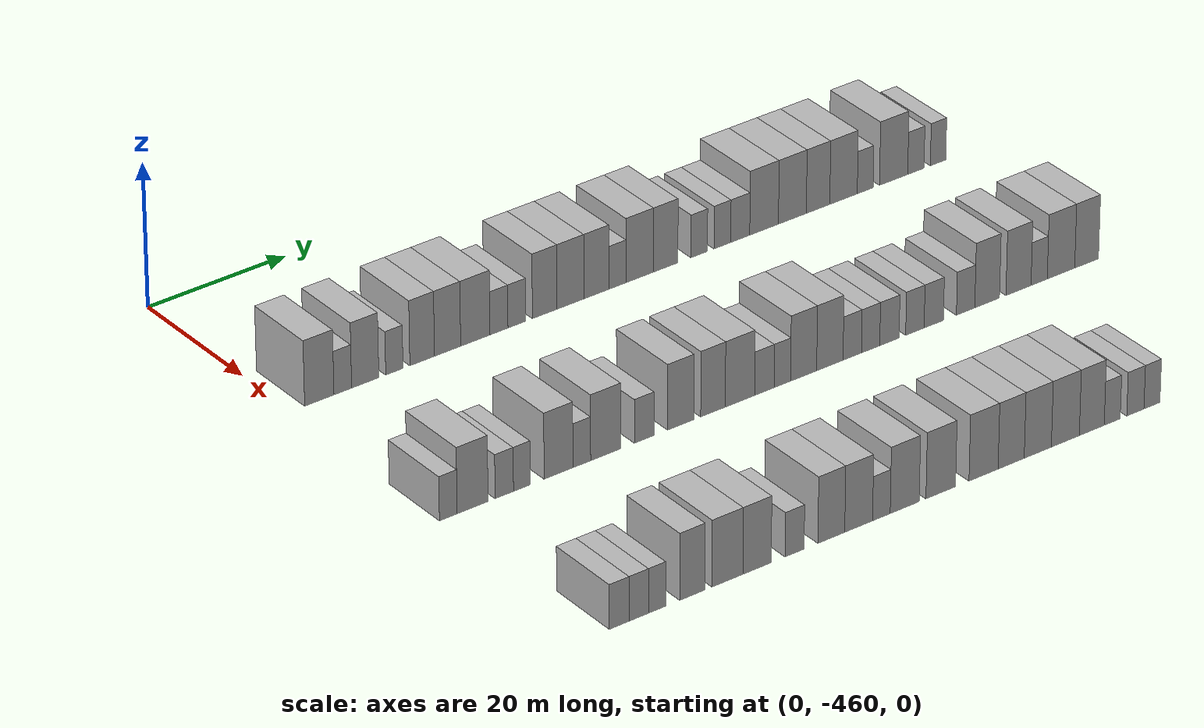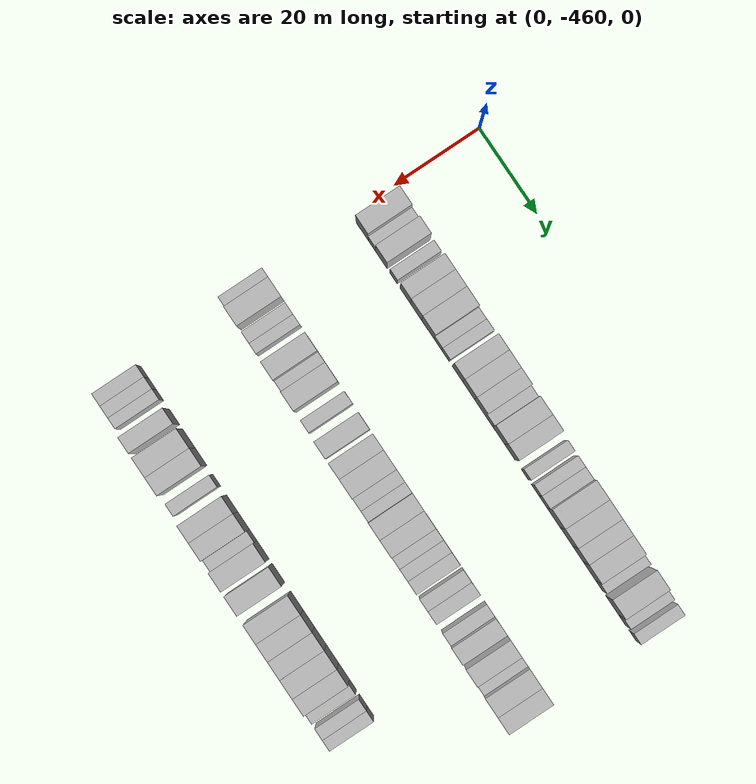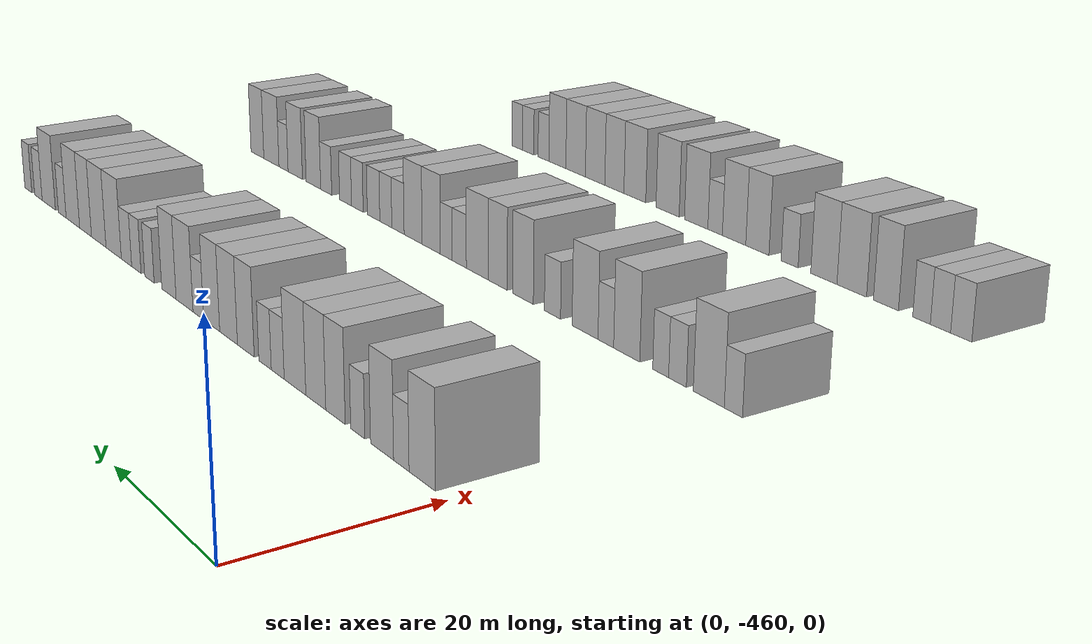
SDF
<sdf version="1.6">
 <world name="default">
  <model name="building_1">
   <static>1</static>
   <pose>25.0000 -455.8936 0 0.000000 0.000000 0.000000</pose>
   <link name="link">
    <pose>0 0 4.50 0 0 0</pose>
    <collision name="collision"><geometry><box><size>10.0000 4.2127 9.0000</size></box></geometry></collision>
    <visual name="visual">
     <cast_shadows>0</cast_shadows>
     <geometry><box><size>10.0000 4.2127 9.0000</size></box></geometry>
     <material>
      <script>
       <uri>model://HANNAS_wall/materials/scripts</uri>
       <uri>model://HANNAS_wall/materials/textures</uri>
       <name>vrc/HANNAS_wall</name>
      </script>
     </material>
    </visual>
   </link>
  </model>
  <model name="building_2">
   <static>1</static>
   <pose>25.0000 -452.5124 0 0.000000 0.000000 0.000000</pose>
   <link name="link">
    <pose>0 0 3.00 0 0 0</pose>
    <collision name="collision"><geometry><box><size>10.0000 2.5498 6.0000</size></box></geometry></collision>
    <visual name="visual">
     <cast_shadows>0</cast_shadows>
     <geometry><box><size>10.0000 2.5498 6.0000</size></box></geometry>
     <material>
      <script>
       <uri>model://HANNAS_wall/materials/scripts</uri>
       <uri>model://HANNAS_wall/materials/textures</uri>
       <name>vrc/HANNAS_wall</name>
      </script>
     </material>
    </visual>
   </link>
  </model>
  <model name="building_3">
   <static>1</static>
   <pose>25.0000 -449.2674 0 0.000000 0.000000 0.000000</pose>
   <link name="link">
    <pose>0 0 4.50 0 0 0</pose>
    <collision name="collision"><geometry><box><size>10.0000 3.9400 9.0000</size></box></geometry></collision>
    <visual name="visual">
     <cast_shadows>0</cast_shadows>
     <geometry><box><size>10.0000 3.9400 9.0000</size></box></geometry>
     <material>
      <script>
       <uri>model://HANNAS_wall/materials/scripts</uri>
       <uri>model://HANNAS_wall/materials/textures</uri>
       <name>vrc/HANNAS_wall</name>
      </script>
     </material>
    </visual>
   </link>
  </model>
  <model name="building_4">
   <static>1</static>
   <pose>25.0000 -445.0389 0 0.000000 0.000000 0.000000</pose>
   <link name="link">
    <pose>0 0 3.00 0 0 0</pose>
    <collision name="collision"><geometry><box><size>10.0000 2.5171 6.0000</size></box></geometry></collision>
    <visual name="visual">
     <cast_shadows>0</cast_shadows>
     <geometry><box><size>10.0000 2.5171 6.0000</size></box></geometry>
     <material>
      <script>
       <uri>model://HANNAS_wall/materials/scripts</uri>
       <uri>model://HANNAS_wall/materials/textures</uri>
       <name>vrc/HANNAS_wall</name>
      </script>
     </material>
    </visual>
   </link>
  </model>
  <model name="building_5">
   <static>1</static>
   <pose>25.0000 -440.9776 0 0.000000 0.000000 0.000000</pose>
   <link name="link">
    <pose>0 0 4.50 0 0 0</pose>
    <collision name="collision"><geometry><box><size>10.0000 3.6056 9.0000</size></box></geometry></collision>
    <visual name="visual">
     <cast_shadows>0</cast_shadows>
     <geometry><box><size>10.0000 3.6056 9.0000</size></box></geometry>
     <material>
      <script>
       <uri>model://HANNAS_wall/materials/scripts</uri>
       <uri>model://HANNAS_wall/materials/textures</uri>
       <name>vrc/HANNAS_wall</name>
      </script>
     </material>
    </visual>
   </link>
  </model>
  <model name="building_6">
   <static>1</static>
   <pose>25.0000 -437.2554 0 0.000000 0.000000 0.000000</pose>
   <link name="link">
    <pose>0 0 4.50 0 0 0</pose>
    <collision name="collision"><geometry><box><size>10.0000 3.8387 9.0000</size></box></geometry></collision>
    <visual name="visual">
     <cast_shadows>0</cast_shadows>
     <geometry><box><size>10.0000 3.8387 9.0000</size></box></geometry>
     <material>
      <script>
       <uri>model://HANNAS_wall/materials/scripts</uri>
       <uri>model://HANNAS_wall/materials/textures</uri>
       <name>vrc/HANNAS_wall</name>
      </script>
     </material>
    </visual>
   </link>
  </model>
  <model name="building_7">
   <static>1</static>
   <pose>25.0000 -433.1729 0 0.000000 0.000000 0.000000</pose>
   <link name="link">
    <pose>0 0 4.50 0 0 0</pose>
    <collision name="collision"><geometry><box><size>10.0000 4.3263 9.0000</size></box></geometry></collision>
    <visual name="visual">
     <cast_shadows>0</cast_shadows>
     <geometry><box><size>10.0000 4.3263 9.0000</size></box></geometry>
     <material>
      <script>
       <uri>model://HANNAS_wall/materials/scripts</uri>
       <uri>model://HANNAS_wall/materials/textures</uri>
       <name>vrc/HANNAS_wall</name>
      </script>
     </material>
    </visual>
   </link>
  </model>
  <model name="building_8">
   <static>1</static>
   <pose>25.0000 -429.6793 0 0.000000 0.000000 0.000000</pose>
   <link name="link">
    <pose>0 0 3.00 0 0 0</pose>
    <collision name="collision"><geometry><box><size>10.0000 2.6608 6.0000</size></box></geometry></collision>
    <visual name="visual">
     <cast_shadows>0</cast_shadows>
     <geometry><box><size>10.0000 2.6608 6.0000</size></box></geometry>
     <material>
      <script>
       <uri>model://HANNAS_wall/materials/scripts</uri>
       <uri>model://HANNAS_wall/materials/textures</uri>
       <name>vrc/HANNAS_wall</name>
      </script>
     </material>
    </visual>
   </link>
  </model>
  <model name="building_9">
   <static>1</static>
   <pose>25.0000 -427.0337 0 0.000000 0.000000 0.000000</pose>
   <link name="link">
    <pose>0 0 3.00 0 0 0</pose>
    <collision name="collision"><geometry><box><size>10.0000 2.6304 6.0000</size></box></geometry></collision>
    <visual name="visual">
     <cast_shadows>0</cast_shadows>
     <geometry><box><size>10.0000 2.6304 6.0000</size></box></geometry>
     <material>
      <script>
       <uri>model://HANNAS_wall/materials/scripts</uri>
       <uri>model://HANNAS_wall/materials/textures</uri>
       <name>vrc/HANNAS_wall</name>
      </script>
     </material>
    </visual>
   </link>
  </model>
  <model name="building_10">
   <static>1</static>
   <pose>25.0000 -422.8815 0 0.000000 0.000000 0.000000</pose>
   <link name="link">
    <pose>0 0 4.50 0 0 0</pose>
    <collision name="collision"><geometry><box><size>10.0000 3.6740 9.0000</size></box></geometry></collision>
    <visual name="visual">
     <cast_shadows>0</cast_shadows>
     <geometry><box><size>10.0000 3.6740 9.0000</size></box></geometry>
     <material>
      <script>
       <uri>model://HANNAS_wall/materials/scripts</uri>
       <uri>model://HANNAS_wall/materials/textures</uri>
       <name>vrc/HANNAS_wall</name>
      </script>
     </material>
    </visual>
   </link>
  </model>
  <model name="building_11">
   <static>1</static>
   <pose>25.0000 -419.0281 0 0.000000 0.000000 0.000000</pose>
   <link name="link">
    <pose>0 0 4.50 0 0 0</pose>
    <collision name="collision"><geometry><box><size>10.0000 4.0328 9.0000</size></box></geometry></collision>
    <visual name="visual">
     <cast_shadows>0</cast_shadows>
     <geometry><box><size>10.0000 4.0328 9.0000</size></box></geometry>
     <material>
      <script>
       <uri>model://HANNAS_wall/materials/scripts</uri>
       <uri>model://HANNAS_wall/materials/textures</uri>
       <name>vrc/HANNAS_wall</name>
      </script>
     </material>
    </visual>
   </link>
  </model>
  <model name="building_12">
   <static>1</static>
   <pose>25.0000 -415.1322 0 0.000000 0.000000 0.000000</pose>
   <link name="link">
    <pose>0 0 4.50 0 0 0</pose>
    <collision name="collision"><geometry><box><size>10.0000 3.7590 9.0000</size></box></geometry></collision>
    <visual name="visual">
     <cast_shadows>0</cast_shadows>
     <geometry><box><size>10.0000 3.7590 9.0000</size></box></geometry>
     <material>
      <script>
       <uri>model://HANNAS_wall/materials/scripts</uri>
       <uri>model://HANNAS_wall/materials/textures</uri>
       <name>vrc/HANNAS_wall</name>
      </script>
     </material>
    </visual>
   </link>
  </model>
  <model name="building_13">
   <static>1</static>
   <pose>25.0000 -411.9635 0 0.000000 0.000000 0.000000</pose>
   <link name="link">
    <pose>0 0 3.00 0 0 0</pose>
    <collision name="collision"><geometry><box><size>10.0000 2.5786 6.0000</size></box></geometry></collision>
    <visual name="visual">
     <cast_shadows>0</cast_shadows>
     <geometry><box><size>10.0000 2.5786 6.0000</size></box></geometry>
     <material>
      <script>
       <uri>model://HANNAS_wall/materials/scripts</uri>
       <uri>model://HANNAS_wall/materials/textures</uri>
       <name>vrc/HANNAS_wall</name>
      </script>
     </material>
    </visual>
   </link>
  </model>
  <model name="building_14">
   <static>1</static>
   <pose>25.0000 -408.5724 0 0.000000 0.000000 0.000000</pose>
   <link name="link">
    <pose>0 0 4.50 0 0 0</pose>
    <collision name="collision"><geometry><box><size>10.0000 4.2035 9.0000</size></box></geometry></collision>
    <visual name="visual">
     <cast_shadows>0</cast_shadows>
     <geometry><box><size>10.0000 4.2035 9.0000</size></box></geometry>
     <material>
      <script>
       <uri>model://HANNAS_wall/materials/scripts</uri>
       <uri>model://HANNAS_wall/materials/textures</uri>
       <name>vrc/HANNAS_wall</name>
      </script>
     </material>
    </visual>
   </link>
  </model>
  <model name="building_15">
   <static>1</static>
   <pose>25.0000 -404.6288 0 0.000000 0.000000 0.000000</pose>
   <link name="link">
    <pose>0 0 4.50 0 0 0</pose>
    <collision name="collision"><geometry><box><size>10.0000 3.6838 9.0000</size></box></geometry></collision>
    <visual name="visual">
     <cast_shadows>0</cast_shadows>
     <geometry><box><size>10.0000 3.6838 9.0000</size></box></geometry>
     <material>
      <script>
       <uri>model://HANNAS_wall/materials/scripts</uri>
       <uri>model://HANNAS_wall/materials/textures</uri>
       <name>vrc/HANNAS_wall</name>
      </script>
     </material>
    </visual>
   </link>
  </model>
  <model name="building_16">
   <static>1</static>
   <pose>25.0000 -399.5275 0 0.000000 0.000000 0.000000</pose>
   <link name="link">
    <pose>0 0 3.00 0 0 0</pose>
    <collision name="collision"><geometry><box><size>10.0000 2.5189 6.0000</size></box></geometry></collision>
    <visual name="visual">
     <cast_shadows>0</cast_shadows>
     <geometry><box><size>10.0000 2.5189 6.0000</size></box></geometry>
     <material>
      <script>
       <uri>model://HANNAS_wall/materials/scripts</uri>
       <uri>model://HANNAS_wall/materials/textures</uri>
       <name>vrc/HANNAS_wall</name>
      </script>
     </material>
    </visual>
   </link>
  </model>
  <model name="building_17">
   <static>1</static>
   <pose>25.0000 -395.9769 0 0.000000 0.000000 0.000000</pose>
   <link name="link">
    <pose>0 0 3.00 0 0 0</pose>
    <collision name="collision"><geometry><box><size>10.0000 2.5824 6.0000</size></box></geometry></collision>
    <visual name="visual">
     <cast_shadows>0</cast_shadows>
     <geometry><box><size>10.0000 2.5824 6.0000</size></box></geometry>
     <material>
      <script>
       <uri>model://HANNAS_wall/materials/scripts</uri>
       <uri>model://HANNAS_wall/materials/textures</uri>
       <name>vrc/HANNAS_wall</name>
      </script>
     </material>
    </visual>
   </link>
  </model>
  <model name="building_18">
   <static>1</static>
   <pose>25.0000 -393.2305 0 0.000000 0.000000 0.000000</pose>
   <link name="link">
    <pose>0 0 3.00 0 0 0</pose>
    <collision name="collision"><geometry><box><size>10.0000 2.9103 6.0000</size></box></geometry></collision>
    <visual name="visual">
     <cast_shadows>0</cast_shadows>
     <geometry><box><size>10.0000 2.9103 6.0000</size></box></geometry>
     <material>
      <script>
       <uri>model://HANNAS_wall/materials/scripts</uri>
       <uri>model://HANNAS_wall/materials/textures</uri>
       <name>vrc/HANNAS_wall</name>
      </script>
     </material>
    </visual>
   </link>
  </model>
  <model name="building_19">
   <static>1</static>
   <pose>25.0000 -389.5546 0 0.000000 0.000000 0.000000</pose>
   <link name="link">
    <pose>0 0 4.50 0 0 0</pose>
    <collision name="collision"><geometry><box><size>10.0000 4.4415 9.0000</size></box></geometry></collision>
    <visual name="visual">
     <cast_shadows>0</cast_shadows>
     <geometry><box><size>10.0000 4.4415 9.0000</size></box></geometry>
     <material>
      <script>
       <uri>model://HANNAS_wall/materials/scripts</uri>
       <uri>model://HANNAS_wall/materials/textures</uri>
       <name>vrc/HANNAS_wall</name>
      </script>
     </material>
    </visual>
   </link>
  </model>
  <model name="building_20">
   <static>1</static>
   <pose>25.0000 -385.1655 0 0.000000 0.000000 0.000000</pose>
   <link name="link">
    <pose>0 0 4.50 0 0 0</pose>
    <collision name="collision"><geometry><box><size>10.0000 4.3367 9.0000</size></box></geometry></collision>
    <visual name="visual">
     <cast_shadows>0</cast_shadows>
     <geometry><box><size>10.0000 4.3367 9.0000</size></box></geometry>
     <material>
      <script>
       <uri>model://HANNAS_wall/materials/scripts</uri>
       <uri>model://HANNAS_wall/materials/textures</uri>
       <name>vrc/HANNAS_wall</name>
      </script>
     </material>
    </visual>
   </link>
  </model>
  <model name="building_21">
   <static>1</static>
   <pose>25.0000 -381.1678 0 0.000000 0.000000 0.000000</pose>
   <link name="link">
    <pose>0 0 4.50 0 0 0</pose>
    <collision name="collision"><geometry><box><size>10.0000 3.6588 9.0000</size></box></geometry></collision>
    <visual name="visual">
     <cast_shadows>0</cast_shadows>
     <geometry><box><size>10.0000 3.6588 9.0000</size></box></geometry>
     <material>
      <script>
       <uri>model://HANNAS_wall/materials/scripts</uri>
       <uri>model://HANNAS_wall/materials/textures</uri>
       <name>vrc/HANNAS_wall</name>
      </script>
     </material>
    </visual>
   </link>
  </model>
  <model name="building_22">
   <static>1</static>
   <pose>25.0000 -377.1846 0 0.000000 0.000000 0.000000</pose>
   <link name="link">
    <pose>0 0 4.50 0 0 0</pose>
    <collision name="collision"><geometry><box><size>10.0000 4.3074 9.0000</size></box></geometry></collision>
    <visual name="visual">
     <cast_shadows>0</cast_shadows>
     <geometry><box><size>10.0000 4.3074 9.0000</size></box></geometry>
     <material>
      <script>
       <uri>model://HANNAS_wall/materials/scripts</uri>
       <uri>model://HANNAS_wall/materials/textures</uri>
       <name>vrc/HANNAS_wall</name>
      </script>
     </material>
    </visual>
   </link>
  </model>
  <model name="building_23">
   <static>1</static>
   <pose>25.0000 -373.7827 0 0.000000 0.000000 0.000000</pose>
   <link name="link">
    <pose>0 0 3.00 0 0 0</pose>
    <collision name="collision"><geometry><box><size>10.0000 2.4965 6.0000</size></box></geometry></collision>
    <visual name="visual">
     <cast_shadows>0</cast_shadows>
     <geometry><box><size>10.0000 2.4965 6.0000</size></box></geometry>
     <material>
      <script>
       <uri>model://HANNAS_wall/materials/scripts</uri>
       <uri>model://HANNAS_wall/materials/textures</uri>
       <name>vrc/HANNAS_wall</name>
      </script>
     </material>
    </visual>
   </link>
  </model>
  <model name="building_24">
   <static>1</static>
   <pose>25.0000 -369.3030 0 0.000000 0.000000 0.000000</pose>
   <link name="link">
    <pose>0 0 4.50 0 0 0</pose>
    <collision name="collision"><geometry><box><size>10.0000 4.4628 9.0000</size></box></geometry></collision>
    <visual name="visual">
     <cast_shadows>0</cast_shadows>
     <geometry><box><size>10.0000 4.4628 9.0000</size></box></geometry>
     <material>
      <script>
       <uri>model://HANNAS_wall/materials/scripts</uri>
       <uri>model://HANNAS_wall/materials/textures</uri>
       <name>vrc/HANNAS_wall</name>
      </script>
     </material>
    </visual>
   </link>
  </model>
  <model name="building_25">
   <static>1</static>
   <pose>25.0000 -365.7763 0 0.000000 0.000000 0.000000</pose>
   <link name="link">
    <pose>0 0 3.00 0 0 0</pose>
    <collision name="collision"><geometry><box><size>10.0000 2.5904 6.0000</size></box></geometry></collision>
    <visual name="visual">
     <cast_shadows>0</cast_shadows>
     <geometry><box><size>10.0000 2.5904 6.0000</size></box></geometry>
     <material>
      <script>
       <uri>model://HANNAS_wall/materials/scripts</uri>
       <uri>model://HANNAS_wall/materials/textures</uri>
       <name>vrc/HANNAS_wall</name>
      </script>
     </material>
    </visual>
   </link>
  </model>
  <model name="building_26">
   <static>1</static>
   <pose>25.0000 -362.2473 0 0.000000 0.000000 0.000000</pose>
   <link name="link">
    <pose>0 0 3.00 0 0 0</pose>
    <collision name="collision"><geometry><box><size>10.0000 2.4677 6.0000</size></box></geometry></collision>
    <visual name="visual">
     <cast_shadows>0</cast_shadows>
     <geometry><box><size>10.0000 2.4677 6.0000</size></box></geometry>
     <material>
      <script>
       <uri>model://HANNAS_wall/materials/scripts</uri>
       <uri>model://HANNAS_wall/materials/textures</uri>
       <name>vrc/HANNAS_wall</name>
      </script>
     </material>
    </visual>
   </link>
  </model>
  <model name="building_229">
   <static>1</static>
   <pose>55.0000 -458.7439 0 0.000000 0.000000 0.000000</pose>
   <link name="link">
    <pose>0 0 3.00 0 0 0</pose>
    <collision name="collision"><geometry><box><size>10.0000 2.5122 6.0000</size></box></geometry></collision>
    <visual name="visual">
     <cast_shadows>0</cast_shadows>
     <geometry><box><size>10.0000 2.5122 6.0000</size></box></geometry>
     <material>
      <script>
       <uri>model://HANNAS_wall/materials/scripts</uri>
       <uri>model://HANNAS_wall/materials/textures</uri>
       <name>vrc/HANNAS_wall</name>
      </script>
     </material>
    </visual>
   </link>
  </model>
  <model name="building_230">
   <static>1</static>
   <pose>55.0000 -455.2845 0 0.000000 0.000000 0.000000</pose>
   <link name="link">
    <pose>0 0 4.50 0 0 0</pose>
    <collision name="collision"><geometry><box><size>10.0000 4.4066 9.0000</size></box></geometry></collision>
    <visual name="visual">
     <cast_shadows>0</cast_shadows>
     <geometry><box><size>10.0000 4.4066 9.0000</size></box></geometry>
     <material>
      <script>
       <uri>model://HANNAS_wall/materials/scripts</uri>
       <uri>model://HANNAS_wall/materials/textures</uri>
       <name>vrc/HANNAS_wall</name>
      </script>
     </material>
    </visual>
   </link>
  </model>
  <model name="building_231">
   <static>1</static>
   <pose>55.0000 -450.7622 0 0.000000 0.000000 0.000000</pose>
   <link name="link">
    <pose>0 0 3.00 0 0 0</pose>
    <collision name="collision"><geometry><box><size>10.0000 2.6380 6.0000</size></box></geometry></collision>
    <visual name="visual">
     <cast_shadows>0</cast_shadows>
     <geometry><box><size>10.0000 2.6380 6.0000</size></box></geometry>
     <material>
      <script>
       <uri>model://HANNAS_wall/materials/scripts</uri>
       <uri>model://HANNAS_wall/materials/textures</uri>
       <name>vrc/HANNAS_wall</name>
      </script>
     </material>
    </visual>
   </link>
  </model>
  <model name="building_232">
   <static>1</static>
   <pose>55.0000 -448.2415 0 0.000000 0.000000 0.000000</pose>
   <link name="link">
    <pose>0 0 3.00 0 0 0</pose>
    <collision name="collision"><geometry><box><size>10.0000 2.4034 6.0000</size></box></geometry></collision>
    <visual name="visual">
     <cast_shadows>0</cast_shadows>
     <geometry><box><size>10.0000 2.4034 6.0000</size></box></geometry>
     <material>
      <script>
       <uri>model://HANNAS_wall/materials/scripts</uri>
       <uri>model://HANNAS_wall/materials/textures</uri>
       <name>vrc/HANNAS_wall</name>
      </script>
     </material>
    </visual>
   </link>
  </model>
  <model name="building_233">
   <static>1</static>
   <pose>55.0000 -442.9581 0 0.000000 0.000000 0.000000</pose>
   <link name="link">
    <pose>0 0 4.50 0 0 0</pose>
    <collision name="collision"><geometry><box><size>10.0000 4.1634 9.0000</size></box></geometry></collision>
    <visual name="visual">
     <cast_shadows>0</cast_shadows>
     <geometry><box><size>10.0000 4.1634 9.0000</size></box></geometry>
     <material>
      <script>
       <uri>model://HANNAS_wall/materials/scripts</uri>
       <uri>model://HANNAS_wall/materials/textures</uri>
       <name>vrc/HANNAS_wall</name>
      </script>
     </material>
    </visual>
   </link>
  </model>
  <model name="building_234">
   <static>1</static>
   <pose>55.0000 -439.5929 0 0.000000 0.000000 0.000000</pose>
   <link name="link">
    <pose>0 0 3.00 0 0 0</pose>
    <collision name="collision"><geometry><box><size>10.0000 2.5670 6.0000</size></box></geometry></collision>
    <visual name="visual">
     <cast_shadows>0</cast_shadows>
     <geometry><box><size>10.0000 2.5670 6.0000</size></box></geometry>
     <material>
      <script>
       <uri>model://HANNAS_wall/materials/scripts</uri>
       <uri>model://HANNAS_wall/materials/textures</uri>
       <name>vrc/HANNAS_wall</name>
      </script>
     </material>
    </visual>
   </link>
  </model>
  <model name="building_235">
   <static>1</static>
   <pose>55.0000 -436.1203 0 0.000000 0.000000 0.000000</pose>
   <link name="link">
    <pose>0 0 4.50 0 0 0</pose>
    <collision name="collision"><geometry><box><size>10.0000 4.3781 9.0000</size></box></geometry></collision>
    <visual name="visual">
     <cast_shadows>0</cast_shadows>
     <geometry><box><size>10.0000 4.3781 9.0000</size></box></geometry>
     <material>
      <script>
       <uri>model://HANNAS_wall/materials/scripts</uri>
       <uri>model://HANNAS_wall/materials/textures</uri>
       <name>vrc/HANNAS_wall</name>
      </script>
     </material>
    </visual>
   </link>
  </model>
  <model name="building_236">
   <static>1</static>
   <pose>55.0000 -430.4982 0 0.000000 0.000000 0.000000</pose>
   <link name="link">
    <pose>0 0 3.00 0 0 0</pose>
    <collision name="collision"><geometry><box><size>10.0000 2.8661 6.0000</size></box></geometry></collision>
    <visual name="visual">
     <cast_shadows>0</cast_shadows>
     <geometry><box><size>10.0000 2.8661 6.0000</size></box></geometry>
     <material>
      <script>
       <uri>model://HANNAS_wall/materials/scripts</uri>
       <uri>model://HANNAS_wall/materials/textures</uri>
       <name>vrc/HANNAS_wall</name>
      </script>
     </material>
    </visual>
   </link>
  </model>
  <model name="building_237">
   <static>1</static>
   <pose>55.0000 -425.1316 0 0.000000 0.000000 0.000000</pose>
   <link name="link">
    <pose>0 0 4.50 0 0 0</pose>
    <collision name="collision"><geometry><box><size>10.0000 3.8672 9.0000</size></box></geometry></collision>
    <visual name="visual">
     <cast_shadows>0</cast_shadows>
     <geometry><box><size>10.0000 3.8672 9.0000</size></box></geometry>
     <material>
      <script>
       <uri>model://HANNAS_wall/materials/scripts</uri>
       <uri>model://HANNAS_wall/materials/textures</uri>
       <name>vrc/HANNAS_wall</name>
      </script>
     </material>
    </visual>
   </link>
  </model>
  <model name="building_238">
   <static>1</static>
   <pose>55.0000 -420.3685 0 0.000000 0.000000 0.000000</pose>
   <link name="link">
    <pose>0 0 4.50 0 0 0</pose>
    <collision name="collision"><geometry><box><size>10.0000 3.6589 9.0000</size></box></geometry></collision>
    <visual name="visual">
     <cast_shadows>0</cast_shadows>
     <geometry><box><size>10.0000 3.6589 9.0000</size></box></geometry>
     <material>
      <script>
       <uri>model://HANNAS_wall/materials/scripts</uri>
       <uri>model://HANNAS_wall/materials/textures</uri>
       <name>vrc/HANNAS_wall</name>
      </script>
     </material>
    </visual>
   </link>
  </model>
  <model name="building_239">
   <static>1</static>
   <pose>55.0000 -416.3540 0 0.000000 0.000000 0.000000</pose>
   <link name="link">
    <pose>0 0 4.50 0 0 0</pose>
    <collision name="collision"><geometry><box><size>10.0000 4.3700 9.0000</size></box></geometry></collision>
    <visual name="visual">
     <cast_shadows>0</cast_shadows>
     <geometry><box><size>10.0000 4.3700 9.0000</size></box></geometry>
     <material>
      <script>
       <uri>model://HANNAS_wall/materials/scripts</uri>
       <uri>model://HANNAS_wall/materials/textures</uri>
       <name>vrc/HANNAS_wall</name>
      </script>
     </material>
    </visual>
   </link>
  </model>
  <model name="building_240">
   <static>1</static>
   <pose>55.0000 -412.7203 0 0.000000 0.000000 0.000000</pose>
   <link name="link">
    <pose>0 0 3.00 0 0 0</pose>
    <collision name="collision"><geometry><box><size>10.0000 2.8976 6.0000</size></box></geometry></collision>
    <visual name="visual">
     <cast_shadows>0</cast_shadows>
     <geometry><box><size>10.0000 2.8976 6.0000</size></box></geometry>
     <material>
      <script>
       <uri>model://HANNAS_wall/materials/scripts</uri>
       <uri>model://HANNAS_wall/materials/textures</uri>
       <name>vrc/HANNAS_wall</name>
      </script>
     </material>
    </visual>
   </link>
  </model>
  <model name="building_241">
   <static>1</static>
   <pose>55.0000 -410.0376 0 0.000000 0.000000 0.000000</pose>
   <link name="link">
    <pose>0 0 3.00 0 0 0</pose>
    <collision name="collision"><geometry><box><size>10.0000 2.4678 6.0000</size></box></geometry></collision>
    <visual name="visual">
     <cast_shadows>0</cast_shadows>
     <geometry><box><size>10.0000 2.4678 6.0000</size></box></geometry>
     <material>
      <script>
       <uri>model://HANNAS_wall/materials/scripts</uri>
       <uri>model://HANNAS_wall/materials/textures</uri>
       <name>vrc/HANNAS_wall</name>
      </script>
     </material>
    </visual>
   </link>
  </model>
  <model name="building_242">
   <static>1</static>
   <pose>55.0000 -406.8427 0 0.000000 0.000000 0.000000</pose>
   <link name="link">
    <pose>0 0 4.50 0 0 0</pose>
    <collision name="collision"><geometry><box><size>10.0000 3.9220 9.0000</size></box></geometry></collision>
    <visual name="visual">
     <cast_shadows>0</cast_shadows>
     <geometry><box><size>10.0000 3.9220 9.0000</size></box></geometry>
     <material>
      <script>
       <uri>model://HANNAS_wall/materials/scripts</uri>
       <uri>model://HANNAS_wall/materials/textures</uri>
       <name>vrc/HANNAS_wall</name>
      </script>
     </material>
    </visual>
   </link>
  </model>
  <model name="building_243">
   <static>1</static>
   <pose>55.0000 -402.8870 0 0.000000 0.000000 0.000000</pose>
   <link name="link">
    <pose>0 0 4.50 0 0 0</pose>
    <collision name="collision"><geometry><box><size>10.0000 3.9893 9.0000</size></box></geometry></collision>
    <visual name="visual">
     <cast_shadows>0</cast_shadows>
     <geometry><box><size>10.0000 3.9893 9.0000</size></box></geometry>
     <material>
      <script>
       <uri>model://HANNAS_wall/materials/scripts</uri>
       <uri>model://HANNAS_wall/materials/textures</uri>
       <name>vrc/HANNAS_wall</name>
      </script>
     </material>
    </visual>
   </link>
  </model>
  <model name="building_244">
   <static>1</static>
   <pose>55.0000 -399.4952 0 0.000000 0.000000 0.000000</pose>
   <link name="link">
    <pose>0 0 3.00 0 0 0</pose>
    <collision name="collision"><geometry><box><size>10.0000 2.7944 6.0000</size></box></geometry></collision>
    <visual name="visual">
     <cast_shadows>0</cast_shadows>
     <geometry><box><size>10.0000 2.7944 6.0000</size></box></geometry>
     <material>
      <script>
       <uri>model://HANNAS_wall/materials/scripts</uri>
       <uri>model://HANNAS_wall/materials/textures</uri>
       <name>vrc/HANNAS_wall</name>
      </script>
     </material>
    </visual>
   </link>
  </model>
  <model name="building_245">
   <static>1</static>
   <pose>55.0000 -396.7076 0 0.000000 0.000000 0.000000</pose>
   <link name="link">
    <pose>0 0 3.00 0 0 0</pose>
    <collision name="collision"><geometry><box><size>10.0000 2.7808 6.0000</size></box></geometry></collision>
    <visual name="visual">
     <cast_shadows>0</cast_shadows>
     <geometry><box><size>10.0000 2.7808 6.0000</size></box></geometry>
     <material>
      <script>
       <uri>model://HANNAS_wall/materials/scripts</uri>
       <uri>model://HANNAS_wall/materials/textures</uri>
       <name>vrc/HANNAS_wall</name>
      </script>
     </material>
    </visual>
   </link>
  </model>
  <model name="building_246">
   <static>1</static>
   <pose>55.0000 -393.8397 0 0.000000 0.000000 0.000000</pose>
   <link name="link">
    <pose>0 0 3.00 0 0 0</pose>
    <collision name="collision"><geometry><box><size>10.0000 2.9551 6.0000</size></box></geometry></collision>
    <visual name="visual">
     <cast_shadows>0</cast_shadows>
     <geometry><box><size>10.0000 2.9551 6.0000</size></box></geometry>
     <material>
      <script>
       <uri>model://HANNAS_wall/materials/scripts</uri>
       <uri>model://HANNAS_wall/materials/textures</uri>
       <name>vrc/HANNAS_wall</name>
      </script>
     </material>
    </visual>
   </link>
  </model>
  <model name="building_247">
   <static>1</static>
   <pose>55.0000 -389.9465 0 0.000000 0.000000 0.000000</pose>
   <link name="link">
    <pose>0 0 3.00 0 0 0</pose>
    <collision name="collision"><geometry><box><size>10.0000 2.8312 6.0000</size></box></geometry></collision>
    <visual name="visual">
     <cast_shadows>0</cast_shadows>
     <geometry><box><size>10.0000 2.8312 6.0000</size></box></geometry>
     <material>
      <script>
       <uri>model://HANNAS_wall/materials/scripts</uri>
       <uri>model://HANNAS_wall/materials/textures</uri>
       <name>vrc/HANNAS_wall</name>
      </script>
     </material>
    </visual>
   </link>
  </model>
  <model name="building_248">
   <static>1</static>
   <pose>55.0000 -387.0479 0 0.000000 0.000000 0.000000</pose>
   <link name="link">
    <pose>0 0 3.00 0 0 0</pose>
    <collision name="collision"><geometry><box><size>10.0000 2.9660 6.0000</size></box></geometry></collision>
    <visual name="visual">
     <cast_shadows>0</cast_shadows>
     <geometry><box><size>10.0000 2.9660 6.0000</size></box></geometry>
     <material>
      <script>
       <uri>model://HANNAS_wall/materials/scripts</uri>
       <uri>model://HANNAS_wall/materials/textures</uri>
       <name>vrc/HANNAS_wall</name>
      </script>
     </material>
    </visual>
   </link>
  </model>
  <model name="building_249">
   <static>1</static>
   <pose>55.0000 -382.1455 0 0.000000 0.000000 0.000000</pose>
   <link name="link">
    <pose>0 0 3.00 0 0 0</pose>
    <collision name="collision"><geometry><box><size>10.0000 2.8389 6.0000</size></box></geometry></collision>
    <visual name="visual">
     <cast_shadows>0</cast_shadows>
     <geometry><box><size>10.0000 2.8389 6.0000</size></box></geometry>
     <material>
      <script>
       <uri>model://HANNAS_wall/materials/scripts</uri>
       <uri>model://HANNAS_wall/materials/textures</uri>
       <name>vrc/HANNAS_wall</name>
      </script>
     </material>
    </visual>
   </link>
  </model>
  <model name="building_250">
   <static>1</static>
   <pose>55.0000 -378.8088 0 0.000000 0.000000 0.000000</pose>
   <link name="link">
    <pose>0 0 4.50 0 0 0</pose>
    <collision name="collision"><geometry><box><size>10.0000 3.8345 9.0000</size></box></geometry></collision>
    <visual name="visual">
     <cast_shadows>0</cast_shadows>
     <geometry><box><size>10.0000 3.8345 9.0000</size></box></geometry>
     <material>
      <script>
       <uri>model://HANNAS_wall/materials/scripts</uri>
       <uri>model://HANNAS_wall/materials/textures</uri>
       <name>vrc/HANNAS_wall</name>
      </script>
     </material>
    </visual>
   </link>
  </model>
  <model name="building_251">
   <static>1</static>
   <pose>55.0000 -373.9348 0 0.000000 0.000000 0.000000</pose>
   <link name="link">
    <pose>0 0 4.50 0 0 0</pose>
    <collision name="collision"><geometry><box><size>10.0000 3.9135 9.0000</size></box></geometry></collision>
    <visual name="visual">
     <cast_shadows>0</cast_shadows>
     <geometry><box><size>10.0000 3.9135 9.0000</size></box></geometry>
     <material>
      <script>
       <uri>model://HANNAS_wall/materials/scripts</uri>
       <uri>model://HANNAS_wall/materials/textures</uri>
       <name>vrc/HANNAS_wall</name>
      </script>
     </material>
    </visual>
   </link>
  </model>
  <model name="building_252">
   <static>1</static>
   <pose>55.0000 -370.7077 0 0.000000 0.000000 0.000000</pose>
   <link name="link">
    <pose>0 0 3.00 0 0 0</pose>
    <collision name="collision"><geometry><box><size>10.0000 2.5406 6.0000</size></box></geometry></collision>
    <visual name="visual">
     <cast_shadows>0</cast_shadows>
     <geometry><box><size>10.0000 2.5406 6.0000</size></box></geometry>
     <material>
      <script>
       <uri>model://HANNAS_wall/materials/scripts</uri>
       <uri>model://HANNAS_wall/materials/textures</uri>
       <name>vrc/HANNAS_wall</name>
      </script>
     </material>
    </visual>
   </link>
  </model>
  <model name="building_253">
   <static>1</static>
   <pose>55.0000 -367.2818 0 0.000000 0.000000 0.000000</pose>
   <link name="link">
    <pose>0 0 4.50 0 0 0</pose>
    <collision name="collision"><geometry><box><size>10.0000 4.3113 9.0000</size></box></geometry></collision>
    <visual name="visual">
     <cast_shadows>0</cast_shadows>
     <geometry><box><size>10.0000 4.3113 9.0000</size></box></geometry>
     <material>
      <script>
       <uri>model://HANNAS_wall/materials/scripts</uri>
       <uri>model://HANNAS_wall/materials/textures</uri>
       <name>vrc/HANNAS_wall</name>
      </script>
     </material>
    </visual>
   </link>
  </model>
  <model name="building_254">
   <static>1</static>
   <pose>55.0000 -363.2517 0 0.000000 0.000000 0.000000</pose>
   <link name="link">
    <pose>0 0 4.50 0 0 0</pose>
    <collision name="collision"><geometry><box><size>10.0000 3.7490 9.0000</size></box></geometry></collision>
    <visual name="visual">
     <cast_shadows>0</cast_shadows>
     <geometry><box><size>10.0000 3.7490 9.0000</size></box></geometry>
     <material>
      <script>
       <uri>model://HANNAS_wall/materials/scripts</uri>
       <uri>model://HANNAS_wall/materials/textures</uri>
       <name>vrc/HANNAS_wall</name>
      </script>
     </material>
    </visual>
   </link>
  </model>
  <model name="building_465">
   <static>1</static>
   <pose>85.0000 -456.6040 0 0.000000 0.000000 0.000000</pose>
   <link name="link">
    <pose>0 0 3.00 0 0 0</pose>
    <collision name="collision"><geometry><box><size>10.0000 2.7919 6.0000</size></box></geometry></collision>
    <visual name="visual">
     <cast_shadows>0</cast_shadows>
     <geometry><box><size>10.0000 2.7919 6.0000</size></box></geometry>
     <material>
      <script>
       <uri>model://HANNAS_wall/materials/scripts</uri>
       <uri>model://HANNAS_wall/materials/textures</uri>
       <name>vrc/HANNAS_wall</name>
      </script>
     </material>
    </visual>
   </link>
  </model>
  <model name="building_466">
   <static>1</static>
   <pose>85.0000 -453.8448 0 0.000000 0.000000 0.000000</pose>
   <link name="link">
    <pose>0 0 3.00 0 0 0</pose>
    <collision name="collision"><geometry><box><size>10.0000 2.7266 6.0000</size></box></geometry></collision>
    <visual name="visual">
     <cast_shadows>0</cast_shadows>
     <geometry><box><size>10.0000 2.7266 6.0000</size></box></geometry>
     <material>
      <script>
       <uri>model://HANNAS_wall/materials/scripts</uri>
       <uri>model://HANNAS_wall/materials/textures</uri>
       <name>vrc/HANNAS_wall</name>
      </script>
     </material>
    </visual>
   </link>
  </model>
  <model name="building_467">
   <static>1</static>
   <pose>85.0000 -451.2665 0 0.000000 0.000000 0.000000</pose>
   <link name="link">
    <pose>0 0 3.00 0 0 0</pose>
    <collision name="collision"><geometry><box><size>10.0000 2.4299 6.0000</size></box></geometry></collision>
    <visual name="visual">
     <cast_shadows>0</cast_shadows>
     <geometry><box><size>10.0000 2.4299 6.0000</size></box></geometry>
     <material>
      <script>
       <uri>model://HANNAS_wall/materials/scripts</uri>
       <uri>model://HANNAS_wall/materials/textures</uri>
       <name>vrc/HANNAS_wall</name>
      </script>
     </material>
    </visual>
   </link>
  </model>
  <model name="building_468">
   <static>1</static>
   <pose>85.0000 -446.2509 0 0.000000 0.000000 0.000000</pose>
   <link name="link">
    <pose>0 0 4.50 0 0 0</pose>
    <collision name="collision"><geometry><box><size>10.0000 3.6014 9.0000</size></box></geometry></collision>
    <visual name="visual">
     <cast_shadows>0</cast_shadows>
     <geometry><box><size>10.0000 3.6014 9.0000</size></box></geometry>
     <material>
      <script>
       <uri>model://HANNAS_wall/materials/scripts</uri>
       <uri>model://HANNAS_wall/materials/textures</uri>
       <name>vrc/HANNAS_wall</name>
      </script>
     </material>
    </visual>
   </link>
  </model>
  <model name="building_469">
   <static>1</static>
   <pose>85.0000 -441.2324 0 0.000000 0.000000 0.000000</pose>
   <link name="link">
    <pose>0 0 4.50 0 0 0</pose>
    <collision name="collision"><geometry><box><size>10.0000 4.4356 9.0000</size></box></geometry></collision>
    <visual name="visual">
     <cast_shadows>0</cast_shadows>
     <geometry><box><size>10.0000 4.4356 9.0000</size></box></geometry>
     <material>
      <script>
       <uri>model://HANNAS_wall/materials/scripts</uri>
       <uri>model://HANNAS_wall/materials/textures</uri>
       <name>vrc/HANNAS_wall</name>
      </script>
     </material>
    </visual>
   </link>
  </model>
  <model name="building_470">
   <static>1</static>
   <pose>85.0000 -436.9798 0 0.000000 0.000000 0.000000</pose>
   <link name="link">
    <pose>0 0 4.50 0 0 0</pose>
    <collision name="collision"><geometry><box><size>10.0000 4.0696 9.0000</size></box></geometry></collision>
    <visual name="visual">
     <cast_shadows>0</cast_shadows>
     <geometry><box><size>10.0000 4.0696 9.0000</size></box></geometry>
     <material>
      <script>
       <uri>model://HANNAS_wall/materials/scripts</uri>
       <uri>model://HANNAS_wall/materials/textures</uri>
       <name>vrc/HANNAS_wall</name>
      </script>
     </material>
    </visual>
   </link>
  </model>
  <model name="building_471">
   <static>1</static>
   <pose>85.0000 -431.5658 0 0.000000 0.000000 0.000000</pose>
   <link name="link">
    <pose>0 0 3.00 0 0 0</pose>
    <collision name="collision"><geometry><box><size>10.0000 2.7584 6.0000</size></box></geometry></collision>
    <visual name="visual">
     <cast_shadows>0</cast_shadows>
     <geometry><box><size>10.0000 2.7584 6.0000</size></box></geometry>
     <material>
      <script>
       <uri>model://HANNAS_wall/materials/scripts</uri>
       <uri>model://HANNAS_wall/materials/textures</uri>
       <name>vrc/HANNAS_wall</name>
      </script>
     </material>
    </visual>
   </link>
  </model>
  <model name="building_472">
   <static>1</static>
   <pose>85.0000 -426.2308 0 0.000000 0.000000 0.000000</pose>
   <link name="link">
    <pose>0 0 4.50 0 0 0</pose>
    <collision name="collision"><geometry><box><size>10.0000 3.9118 9.0000</size></box></geometry></collision>
    <visual name="visual">
     <cast_shadows>0</cast_shadows>
     <geometry><box><size>10.0000 3.9118 9.0000</size></box></geometry>
     <material>
      <script>
       <uri>model://HANNAS_wall/materials/scripts</uri>
       <uri>model://HANNAS_wall/materials/textures</uri>
       <name>vrc/HANNAS_wall</name>
      </script>
     </material>
    </visual>
   </link>
  </model>
  <model name="building_473">
   <static>1</static>
   <pose>85.0000 -422.2377 0 0.000000 0.000000 0.000000</pose>
   <link name="link">
    <pose>0 0 4.50 0 0 0</pose>
    <collision name="collision"><geometry><box><size>10.0000 4.0744 9.0000</size></box></geometry></collision>
    <visual name="visual">
     <cast_shadows>0</cast_shadows>
     <geometry><box><size>10.0000 4.0744 9.0000</size></box></geometry>
     <material>
      <script>
       <uri>model://HANNAS_wall/materials/scripts</uri>
       <uri>model://HANNAS_wall/materials/textures</uri>
       <name>vrc/HANNAS_wall</name>
      </script>
     </material>
    </visual>
   </link>
  </model>
  <model name="building_474">
   <static>1</static>
   <pose>85.0000 -418.9040 0 0.000000 0.000000 0.000000</pose>
   <link name="link">
    <pose>0 0 3.00 0 0 0</pose>
    <collision name="collision"><geometry><box><size>10.0000 2.5931 6.0000</size></box></geometry></collision>
    <visual name="visual">
     <cast_shadows>0</cast_shadows>
     <geometry><box><size>10.0000 2.5931 6.0000</size></box></geometry>
     <material>
      <script>
       <uri>model://HANNAS_wall/materials/scripts</uri>
       <uri>model://HANNAS_wall/materials/textures</uri>
       <name>vrc/HANNAS_wall</name>
      </script>
     </material>
    </visual>
   </link>
  </model>
  <model name="building_475">
   <static>1</static>
   <pose>85.0000 -415.4686 0 0.000000 0.000000 0.000000</pose>
   <link name="link">
    <pose>0 0 4.50 0 0 0</pose>
    <collision name="collision"><geometry><box><size>10.0000 4.2777 9.0000</size></box></geometry></collision>
    <visual name="visual">
     <cast_shadows>0</cast_shadows>
     <geometry><box><size>10.0000 4.2777 9.0000</size></box></geometry>
     <material>
      <script>
       <uri>model://HANNAS_wall/materials/scripts</uri>
       <uri>model://HANNAS_wall/materials/textures</uri>
       <name>vrc/HANNAS_wall</name>
      </script>
     </material>
    </visual>
   </link>
  </model>
  <model name="building_476">
   <static>1</static>
   <pose>85.0000 -410.1303 0 0.000000 0.000000 0.000000</pose>
   <link name="link">
    <pose>0 0 4.50 0 0 0</pose>
    <collision name="collision"><geometry><box><size>10.0000 4.3989 9.0000</size></box></geometry></collision>
    <visual name="visual">
     <cast_shadows>0</cast_shadows>
     <geometry><box><size>10.0000 4.3989 9.0000</size></box></geometry>
     <material>
      <script>
       <uri>model://HANNAS_wall/materials/scripts</uri>
       <uri>model://HANNAS_wall/materials/textures</uri>
       <name>vrc/HANNAS_wall</name>
      </script>
     </material>
    </visual>
   </link>
  </model>
  <model name="building_477">
   <static>1</static>
   <pose>85.0000 -403.7537 0 0.000000 0.000000 0.000000</pose>
   <link name="link">
    <pose>0 0 4.50 0 0 0</pose>
    <collision name="collision"><geometry><box><size>10.0000 4.3541 9.0000</size></box></geometry></collision>
    <visual name="visual">
     <cast_shadows>0</cast_shadows>
     <geometry><box><size>10.0000 4.3541 9.0000</size></box></geometry>
     <material>
      <script>
       <uri>model://HANNAS_wall/materials/scripts</uri>
       <uri>model://HANNAS_wall/materials/textures</uri>
       <name>vrc/HANNAS_wall</name>
      </script>
     </material>
    </visual>
   </link>
  </model>
  <model name="building_478">
   <static>1</static>
   <pose>85.0000 -399.6135 0 0.000000 0.000000 0.000000</pose>
   <link name="link">
    <pose>0 0 4.50 0 0 0</pose>
    <collision name="collision"><geometry><box><size>10.0000 3.9264 9.0000</size></box></geometry></collision>
    <visual name="visual">
     <cast_shadows>0</cast_shadows>
     <geometry><box><size>10.0000 3.9264 9.0000</size></box></geometry>
     <material>
      <script>
       <uri>model://HANNAS_wall/materials/scripts</uri>
       <uri>model://HANNAS_wall/materials/textures</uri>
       <name>vrc/HANNAS_wall</name>
      </script>
     </material>
    </visual>
   </link>
  </model>
  <model name="building_479">
   <static>1</static>
   <pose>85.0000 -395.6025 0 0.000000 0.000000 0.000000</pose>
   <link name="link">
    <pose>0 0 4.50 0 0 0</pose>
    <collision name="collision"><geometry><box><size>10.0000 4.0955 9.0000</size></box></geometry></collision>
    <visual name="visual">
     <cast_shadows>0</cast_shadows>
     <geometry><box><size>10.0000 4.0955 9.0000</size></box></geometry>
     <material>
      <script>
       <uri>model://HANNAS_wall/materials/scripts</uri>
       <uri>model://HANNAS_wall/materials/textures</uri>
       <name>vrc/HANNAS_wall</name>
      </script>
     </material>
    </visual>
   </link>
  </model>
  <model name="building_480">
   <static>1</static>
   <pose>85.0000 -391.4354 0 0.000000 0.000000 0.000000</pose>
   <link name="link">
    <pose>0 0 4.50 0 0 0</pose>
    <collision name="collision"><geometry><box><size>10.0000 4.2386 9.0000</size></box></geometry></collision>
    <visual name="visual">
     <cast_shadows>0</cast_shadows>
     <geometry><box><size>10.0000 4.2386 9.0000</size></box></geometry>
     <material>
      <script>
       <uri>model://HANNAS_wall/materials/scripts</uri>
       <uri>model://HANNAS_wall/materials/textures</uri>
       <name>vrc/HANNAS_wall</name>
      </script>
     </material>
    </visual>
   </link>
  </model>
  <model name="building_481">
   <static>1</static>
   <pose>85.0000 -387.4186 0 0.000000 0.000000 0.000000</pose>
   <link name="link">
    <pose>0 0 4.50 0 0 0</pose>
    <collision name="collision"><geometry><box><size>10.0000 3.7950 9.0000</size></box></geometry></collision>
    <visual name="visual">
     <cast_shadows>0</cast_shadows>
     <geometry><box><size>10.0000 3.7950 9.0000</size></box></geometry>
     <material>
      <script>
       <uri>model://HANNAS_wall/materials/scripts</uri>
       <uri>model://HANNAS_wall/materials/textures</uri>
       <name>vrc/HANNAS_wall</name>
      </script>
     </material>
    </visual>
   </link>
  </model>
  <model name="building_482">
   <static>1</static>
   <pose>85.0000 -384.2967 0 0.000000 0.000000 0.000000</pose>
   <link name="link">
    <pose>0 0 3.00 0 0 0</pose>
    <collision name="collision"><geometry><box><size>10.0000 2.4488 6.0000</size></box></geometry></collision>
    <visual name="visual">
     <cast_shadows>0</cast_shadows>
     <geometry><box><size>10.0000 2.4488 6.0000</size></box></geometry>
     <material>
      <script>
       <uri>model://HANNAS_wall/materials/scripts</uri>
       <uri>model://HANNAS_wall/materials/textures</uri>
       <name>vrc/HANNAS_wall</name>
      </script>
     </material>
    </visual>
   </link>
  </model>
  <model name="building_483">
   <static>1</static>
   <pose>85.0000 -380.7537 0 0.000000 0.000000 0.000000</pose>
   <link name="link">
    <pose>0 0 3.00 0 0 0</pose>
    <collision name="collision"><geometry><box><size>10.0000 2.6372 6.0000</size></box></geometry></collision>
    <visual name="visual">
     <cast_shadows>0</cast_shadows>
     <geometry><box><size>10.0000 2.6372 6.0000</size></box></geometry>
     <material>
      <script>
       <uri>model://HANNAS_wall/materials/scripts</uri>
       <uri>model://HANNAS_wall/materials/textures</uri>
       <name>vrc/HANNAS_wall</name>
      </script>
     </material>
    </visual>
   </link>
  </model>
  <model name="building_484">
   <static>1</static>
   <pose>85.0000 -378.2027 0 0.000000 0.000000 0.000000</pose>
   <link name="link">
    <pose>0 0 3.00 0 0 0</pose>
    <collision name="collision"><geometry><box><size>10.0000 2.4647 6.0000</size></box></geometry></collision>
    <visual name="visual">
     <cast_shadows>0</cast_shadows>
     <geometry><box><size>10.0000 2.4647 6.0000</size></box></geometry>
     <material>
      <script>
       <uri>model://HANNAS_wall/materials/scripts</uri>
       <uri>model://HANNAS_wall/materials/textures</uri>
       <name>vrc/HANNAS_wall</name>
      </script>
     </material>
    </visual>
   </link>
  </model>
 </world>
</sdf>
